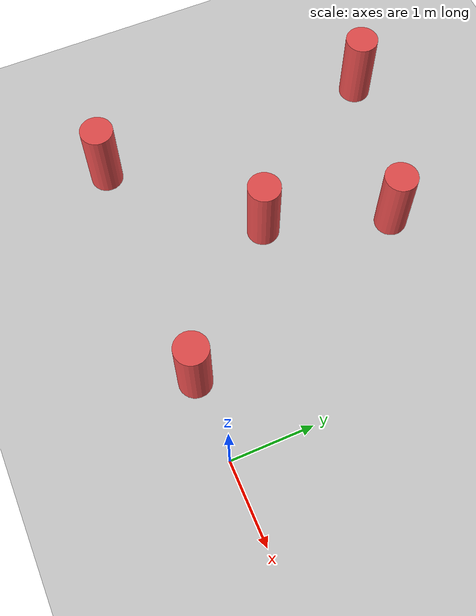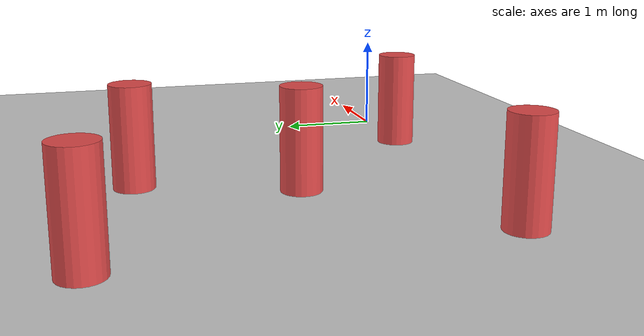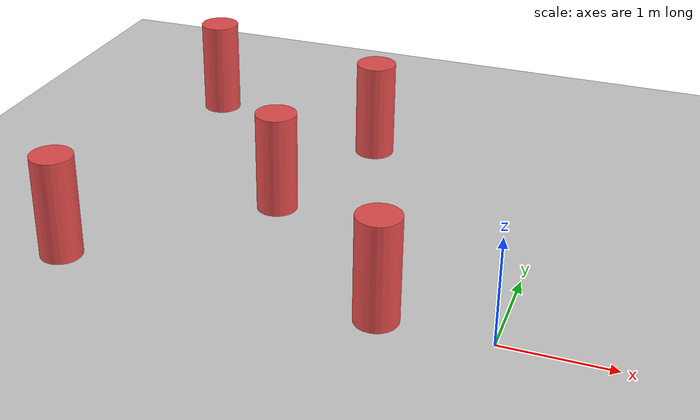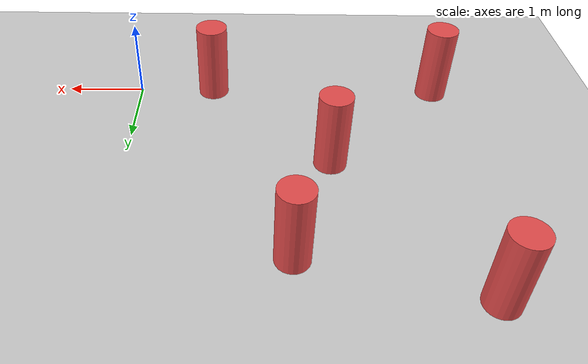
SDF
<sdf version="1.6">
 <world name="default">
  <model name="ground_plane">
   <pose>-4 3.5 0 0 -0 0</pose>
   <static>1</static>
   <link name="link">
    <collision name="collision">
     <geometry><plane><normal>0 0 1</normal><size>100 100</size></plane></geometry>
     <surface>
      <contact><collide_bitmask>65535</collide_bitmask></contact>
      <friction><ode><mu>100</mu><mu2>50</mu2></ode></friction>
     </surface>
    </collision>
    <visual name="visual">
     <cast_shadows>0</cast_shadows>
     <geometry><plane><normal>0 0 1</normal><size>100 100</size></plane></geometry>
     <material>
      <script><uri>file://media/materials/scripts/gazebo.material</uri><name>Gazebo/Grey</name></script>
     </material>
    </visual>
   </link>
  </model>
  <model name="cyliner_0.25_0_clone">
   <link name="link">
    <inertial>
     <mass>10000</mass>
     <inertia><ixx>989.583</ixx><ixy>0</ixy><ixz>0</ixz><iyy>989.583</iyy><iyz>0</iyz><izz>312.5</izz></inertia>
    </inertial>
    <visual name="visual">
     <geometry><cylinder><radius>0.2</radius><length>1</length></cylinder></geometry>
     <material>
      <script><name>Gazebo/Grey</name><uri>file://media/materials/scripts/gazebo.material</uri></script>
      <shader type="vertex"><normal_map>__default__</normal_map></shader>
      <ambient>0.9 0.3 0.3 1</ambient>
      <diffuse>0.7 0.7 0.7 1</diffuse>
      <specular>0.01 0.01 0.01 1</specular>
      <emissive>0 0 0 1</emissive>
     </material>
    </visual>
    <collision name="collision">
     <geometry><cylinder><radius>0.19</radius><length>1</length></cylinder></geometry>
     <surface>
      <friction>
       <ode><mu>1</mu><mu2>1</mu2><fdir1>0 0 0</fdir1><slip1>0</slip1><slip2>0</slip2></ode>
       <torsional>
        <coefficient>1</coefficient>
        <patch_radius>0</patch_radius>
        <surface_radius>0</surface_radius>
        <use_patch_radius>1</use_patch_radius>
        <ode><slip>0</slip></ode>
       </torsional>
      </friction>
      <bounce><restitution_coefficient>0</restitution_coefficient><threshold>1e+06</threshold></bounce>
      <contact>
       <collide_without_contact>0</collide_without_contact>
       <collide_without_contact_bitmask>1</collide_without_contact_bitmask>
       <collide_bitmask>1</collide_bitmask>
       <ode>
        <soft_cfm>0</soft_cfm>
        <soft_erp>0.2</soft_erp>
        <kp>1e+13</kp>
        <kd>1</kd>
        <max_vel>0.01</max_vel>
        <min_depth>0</min_depth>
       </ode>
       <bullet>
        <split_impulse>1</split_impulse>
        <split_impulse_penetration_threshold>-0.01</split_impulse_penetration_threshold>
        <soft_cfm>0</soft_cfm>
        <soft_erp>0.2</soft_erp>
        <kp>1e+13</kp>
        <kd>1</kd>
       </bullet>
      </contact>
     </surface>
    </collision>
   </link>
   <static>0</static>
   <pose>-2 3 0.5 0 -0 0</pose>
  </model>
  <model name="cyliner_0.25_0_clone_clone_0_clone_5">
   <link name="link">
    <inertial>
     <mass>10000</mass>
     <inertia><ixx>989.583</ixx><ixy>0</ixy><ixz>0</ixz><iyy>989.583</iyy><iyz>0</iyz><izz>312.5</izz></inertia>
    </inertial>
    <visual name="visual">
     <geometry><cylinder><radius>0.2</radius><length>1</length></cylinder></geometry>
     <material>
      <script><name>Gazebo/Grey</name><uri>file://media/materials/scripts/gazebo.material</uri></script>
      <shader type="vertex"><normal_map>__default__</normal_map></shader>
      <ambient>0.9 0.3 0.3 1</ambient>
      <diffuse>0.7 0.7 0.7 1</diffuse>
      <specular>0.01 0.01 0.01 1</specular>
      <emissive>0 0 0 1</emissive>
     </material>
    </visual>
    <collision name="collision">
     <geometry><cylinder><radius>0.19</radius><length>1</length></cylinder></geometry>
     <surface>
      <friction>
       <ode><mu>1</mu><mu2>1</mu2><fdir1>0 0 0</fdir1><slip1>0</slip1><slip2>0</slip2></ode>
       <torsional>
        <coefficient>1</coefficient>
        <patch_radius>0</patch_radius>
        <surface_radius>0</surface_radius>
        <use_patch_radius>1</use_patch_radius>
        <ode><slip>0</slip></ode>
       </torsional>
      </friction>
      <bounce><restitution_coefficient>0</restitution_coefficient><threshold>1e+06</threshold></bounce>
      <contact>
       <collide_without_contact>0</collide_without_contact>
       <collide_without_contact_bitmask>1</collide_without_contact_bitmask>
       <collide_bitmask>1</collide_bitmask>
       <ode>
        <soft_cfm>0</soft_cfm>
        <soft_erp>0.2</soft_erp>
        <kp>1e+13</kp>
        <kd>1</kd>
        <max_vel>0.01</max_vel>
        <min_depth>0</min_depth>
       </ode>
       <bullet>
        <split_impulse>1</split_impulse>
        <split_impulse_penetration_threshold>-0.01</split_impulse_penetration_threshold>
        <soft_cfm>0</soft_cfm>
        <soft_erp>0.2</soft_erp>
        <kp>1e+13</kp>
        <kd>1</kd>
       </bullet>
      </contact>
     </surface>
    </collision>
   </link>
   <static>0</static>
   <pose>-4 3.5 0.5 0 -0 0</pose>
  </model>
  <model name="cyliner_0.25_0_clone_clone_0_clone_4">
   <link name="link">
    <inertial>
     <mass>10000</mass>
     <inertia><ixx>989.583</ixx><ixy>0</ixy><ixz>0</ixz><iyy>989.583</iyy><iyz>0</iyz><izz>312.5</izz></inertia>
    </inertial>
    <visual name="visual">
     <geometry><cylinder><radius>0.2</radius><length>1</length></cylinder></geometry>
     <material>
      <script><name>Gazebo/Grey</name><uri>file://media/materials/scripts/gazebo.material</uri></script>
      <shader type="vertex"><normal_map>__default__</normal_map></shader>
      <ambient>0.9 0.3 0.3 1</ambient>
      <diffuse>0.7 0.7 0.7 1</diffuse>
      <specular>0.01 0.01 0.01 1</specular>
      <emissive>0 0 0 1</emissive>
     </material>
    </visual>
    <collision name="collision">
     <geometry><cylinder><radius>0.19</radius><length>1</length></cylinder></geometry>
     <surface>
      <friction>
       <ode><mu>1</mu><mu2>1</mu2><fdir1>0 0 0</fdir1><slip1>0</slip1><slip2>0</slip2></ode>
       <torsional>
        <coefficient>1</coefficient>
        <patch_radius>0</patch_radius>
        <surface_radius>0</surface_radius>
        <use_patch_radius>1</use_patch_radius>
        <ode><slip>0</slip></ode>
       </torsional>
      </friction>
      <bounce><restitution_coefficient>0</restitution_coefficient><threshold>1e+06</threshold></bounce>
      <contact>
       <collide_without_contact>0</collide_without_contact>
       <collide_without_contact_bitmask>1</collide_without_contact_bitmask>
       <collide_bitmask>1</collide_bitmask>
       <ode>
        <soft_cfm>0</soft_cfm>
        <soft_erp>0.2</soft_erp>
        <kp>1e+13</kp>
        <kd>1</kd>
        <max_vel>0.01</max_vel>
        <min_depth>0</min_depth>
       </ode>
       <bullet>
        <split_impulse>1</split_impulse>
        <split_impulse_penetration_threshold>-0.01</split_impulse_penetration_threshold>
        <soft_cfm>0</soft_cfm>
        <soft_erp>0.2</soft_erp>
        <kp>1e+13</kp>
        <kd>1</kd>
       </bullet>
      </contact>
     </surface>
    </collision>
   </link>
   <static>0</static>
   <pose>-2.5 1.5 0.5 0 -0 0</pose>
  </model>
  <model name="cyliner_0.25">
   <link name="link">
    <inertial>
     <mass>10000</mass>
     <inertia><ixx>989.583</ixx><ixy>0</ixy><ixz>0</ixz><iyy>989.583</iyy><iyz>0</iyz><izz>312.5</izz></inertia>
    </inertial>
    <visual name="visual">
     <geometry><cylinder><radius>0.2</radius><length>1</length></cylinder></geometry>
     <material>
      <script><name>Gazebo/Grey</name><uri>file://media/materials/scripts/gazebo.material</uri></script>
      <shader type="vertex"><normal_map>__default__</normal_map></shader>
      <ambient>0.9 0.3 0.3 1</ambient>
      <diffuse>0.7 0.7 0.7 1</diffuse>
      <specular>0.01 0.01 0.01 1</specular>
      <emissive>0 0 0 1</emissive>
     </material>
    </visual>
    <collision name="collision">
     <geometry><cylinder><radius>0.19</radius><length>1</length></cylinder></geometry>
     <surface>
      <friction>
       <ode><mu>1</mu><mu2>1</mu2><fdir1>0 0 0</fdir1><slip1>0</slip1><slip2>0</slip2></ode>
       <torsional>
        <coefficient>1</coefficient>
        <patch_radius>0</patch_radius>
        <surface_radius>0</surface_radius>
        <use_patch_radius>1</use_patch_radius>
        <ode><slip>0</slip></ode>
       </torsional>
      </friction>
      <bounce><restitution_coefficient>0</restitution_coefficient><threshold>1e+06</threshold></bounce>
      <contact>
       <collide_without_contact>0</collide_without_contact>
       <collide_without_contact_bitmask>1</collide_without_contact_bitmask>
       <collide_bitmask>1</collide_bitmask>
       <ode>
        <soft_cfm>0</soft_cfm>
        <soft_erp>0.2</soft_erp>
        <kp>1e+13</kp>
        <kd>1</kd>
        <max_vel>0.01</max_vel>
        <min_depth>0</min_depth>
       </ode>
       <bullet>
        <split_impulse>1</split_impulse>
        <split_impulse_penetration_threshold>-0.01</split_impulse_penetration_threshold>
        <soft_cfm>0</soft_cfm>
        <soft_erp>0.2</soft_erp>
        <kp>1e+13</kp>
        <kd>1</kd>
       </bullet>
      </contact>
     </surface>
    </collision>
   </link>
   <static>0</static>
   <pose>-4 0 0.5 0 -0 0</pose>
  </model>
  <model name="cyliner_0.25_0">
   <link name="link">
    <inertial>
     <mass>10000</mass>
     <inertia><ixx>989.583</ixx><ixy>0</ixy><ixz>0</ixz><iyy>989.583</iyy><iyz>0</iyz><izz>312.5</izz></inertia>
    </inertial>
    <visual name="visual">
     <geometry><cylinder><radius>0.2</radius><length>1</length></cylinder></geometry>
     <material>
      <script><name>Gazebo/Grey</name><uri>file://media/materials/scripts/gazebo.material</uri></script>
      <shader type="vertex"><normal_map>__default__</normal_map></shader>
      <ambient>0.9 0.3 0.3 1</ambient>
      <diffuse>0.7 0.7 0.7 1</diffuse>
      <specular>0.01 0.01 0.01 1</specular>
      <emissive>0 0 0 1</emissive>
     </material>
    </visual>
    <collision name="collision">
     <geometry><cylinder><radius>0.19</radius><length>1</length></cylinder></geometry>
     <surface>
      <friction>
       <ode><mu>1</mu><mu2>1</mu2><fdir1>0 0 0</fdir1><slip1>0</slip1><slip2>0</slip2></ode>
       <torsional>
        <coefficient>1</coefficient>
        <patch_radius>0</patch_radius>
        <surface_radius>0</surface_radius>
        <use_patch_radius>1</use_patch_radius>
        <ode><slip>0</slip></ode>
       </torsional>
      </friction>
      <bounce><restitution_coefficient>0</restitution_coefficient><threshold>1e+06</threshold></bounce>
      <contact>
       <collide_without_contact>0</collide_without_contact>
       <collide_without_contact_bitmask>1</collide_without_contact_bitmask>
       <collide_bitmask>1</collide_bitmask>
       <ode>
        <soft_cfm>0</soft_cfm>
        <soft_erp>0.2</soft_erp>
        <kp>1e+13</kp>
        <kd>1</kd>
        <max_vel>0.01</max_vel>
        <min_depth>0</min_depth>
       </ode>
       <bullet>
        <split_impulse>1</split_impulse>
        <split_impulse_penetration_threshold>-0.01</split_impulse_penetration_threshold>
        <soft_cfm>0</soft_cfm>
        <soft_erp>0.2</soft_erp>
        <kp>1e+13</kp>
        <kd>1</kd>
       </bullet>
      </contact>
     </surface>
    </collision>
   </link>
   <static>0</static>
   <pose>-1 0 0.5 0 -0 0</pose>
  </model>
 </world>
</sdf>
